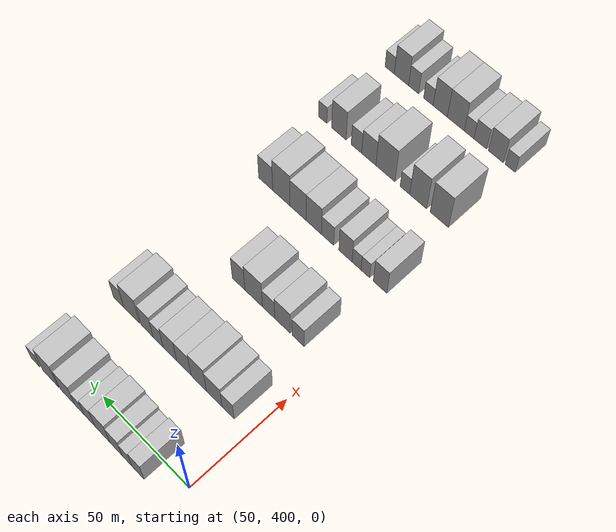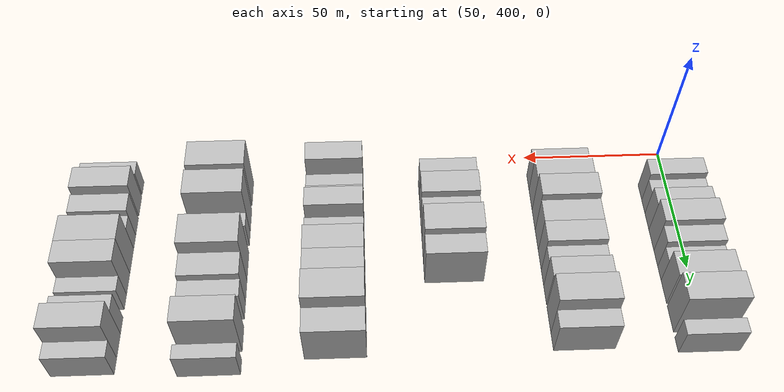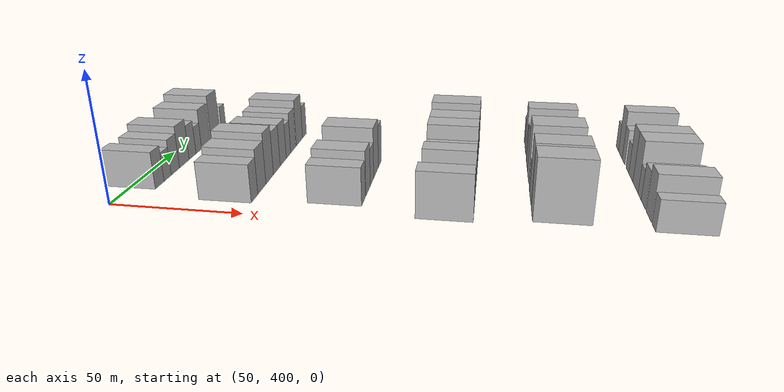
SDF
<sdf version="1.6">
 <world name="default">
  <model name="building_114">
   <static>1</static>
   <pose>50.0000 417.5932 0 0.000000 0.000000 0.000000</pose>
   <link name="link">
    <pose>0 0 7.50 0 0 0</pose>
    <collision name="collision"><geometry><box><size>20.0000 6.8262 15.0000</size></box></geometry></collision>
    <visual name="visual">
     <cast_shadows>0</cast_shadows>
     <geometry><box><size>20.0000 6.8262 15.0000</size></box></geometry>
     <material>
      <script>
       <uri>model://HANNAS_wall/materials/scripts</uri>
       <uri>model://HANNAS_wall/materials/textures</uri>
       <name>vrc/HANNAS_wall</name>
      </script>
     </material>
    </visual>
   </link>
  </model>
  <model name="building_115">
   <static>1</static>
   <pose>50.0000 423.9390 0 0.000000 0.000000 0.000000</pose>
   <link name="link">
    <pose>0 0 6.00 0 0 0</pose>
    <collision name="collision"><geometry><box><size>20.0000 5.8653 12.0000</size></box></geometry></collision>
    <visual name="visual">
     <cast_shadows>0</cast_shadows>
     <geometry><box><size>20.0000 5.8653 12.0000</size></box></geometry>
     <material>
      <script>
       <uri>model://HANNAS_wall/materials/scripts</uri>
       <uri>model://HANNAS_wall/materials/textures</uri>
       <name>vrc/HANNAS_wall</name>
      </script>
     </material>
    </visual>
   </link>
  </model>
  <model name="building_116">
   <static>1</static>
   <pose>50.0000 430.4370 0 0.000000 0.000000 0.000000</pose>
   <link name="link">
    <pose>0 0 7.50 0 0 0</pose>
    <collision name="collision"><geometry><box><size>20.0000 7.1307 15.0000</size></box></geometry></collision>
    <visual name="visual">
     <cast_shadows>0</cast_shadows>
     <geometry><box><size>20.0000 7.1307 15.0000</size></box></geometry>
     <material>
      <script>
       <uri>model://HANNAS_wall/materials/scripts</uri>
       <uri>model://HANNAS_wall/materials/textures</uri>
       <name>vrc/HANNAS_wall</name>
      </script>
     </material>
    </visual>
   </link>
  </model>
  <model name="building_117">
   <static>1</static>
   <pose>50.0000 438.3695 0 0.000000 0.000000 0.000000</pose>
   <link name="link">
    <pose>0 0 9.00 0 0 0</pose>
    <collision name="collision"><geometry><box><size>20.0000 8.7342 18.0000</size></box></geometry></collision>
    <visual name="visual">
     <cast_shadows>0</cast_shadows>
     <geometry><box><size>20.0000 8.7342 18.0000</size></box></geometry>
     <material>
      <script>
       <uri>model://HANNAS_wall/materials/scripts</uri>
       <uri>model://HANNAS_wall/materials/textures</uri>
       <name>vrc/HANNAS_wall</name>
      </script>
     </material>
    </visual>
   </link>
  </model>
  <model name="building_118">
   <static>1</static>
   <pose>50.0000 445.9997 0 0.000000 0.000000 0.000000</pose>
   <link name="link">
    <pose>0 0 7.50 0 0 0</pose>
    <collision name="collision"><geometry><box><size>20.0000 6.5263 15.0000</size></box></geometry></collision>
    <visual name="visual">
     <cast_shadows>0</cast_shadows>
     <geometry><box><size>20.0000 6.5263 15.0000</size></box></geometry>
     <material>
      <script>
       <uri>model://HANNAS_wall/materials/scripts</uri>
       <uri>model://HANNAS_wall/materials/textures</uri>
       <name>vrc/HANNAS_wall</name>
      </script>
     </material>
    </visual>
   </link>
  </model>
  <model name="building_119">
   <static>1</static>
   <pose>50.0000 452.0477 0 0.000000 0.000000 0.000000</pose>
   <link name="link">
    <pose>0 0 6.00 0 0 0</pose>
    <collision name="collision"><geometry><box><size>20.0000 5.5697 12.0000</size></box></geometry></collision>
    <visual name="visual">
     <cast_shadows>0</cast_shadows>
     <geometry><box><size>20.0000 5.5697 12.0000</size></box></geometry>
     <material>
      <script>
       <uri>model://HANNAS_wall/materials/scripts</uri>
       <uri>model://HANNAS_wall/materials/textures</uri>
       <name>vrc/HANNAS_wall</name>
      </script>
     </material>
    </visual>
   </link>
  </model>
  <model name="building_120">
   <static>1</static>
   <pose>50.0000 459.3215 0 0.000000 0.000000 0.000000</pose>
   <link name="link">
    <pose>0 0 9.00 0 0 0</pose>
    <collision name="collision"><geometry><box><size>20.0000 8.9779 18.0000</size></box></geometry></collision>
    <visual name="visual">
     <cast_shadows>0</cast_shadows>
     <geometry><box><size>20.0000 8.9779 18.0000</size></box></geometry>
     <material>
      <script>
       <uri>model://HANNAS_wall/materials/scripts</uri>
       <uri>model://HANNAS_wall/materials/textures</uri>
       <name>vrc/HANNAS_wall</name>
      </script>
     </material>
    </visual>
   </link>
  </model>
  <model name="building_121">
   <static>1</static>
   <pose>50.0000 469.6960 0 0.000000 0.000000 0.000000</pose>
   <link name="link">
    <pose>0 0 10.50 0 0 0</pose>
    <collision name="collision"><geometry><box><size>20.0000 9.7711 21.0000</size></box></geometry></collision>
    <visual name="visual">
     <cast_shadows>0</cast_shadows>
     <geometry><box><size>20.0000 9.7711 21.0000</size></box></geometry>
     <material>
      <script>
       <uri>model://HANNAS_wall/materials/scripts</uri>
       <uri>model://HANNAS_wall/materials/textures</uri>
       <name>vrc/HANNAS_wall</name>
      </script>
     </material>
    </visual>
   </link>
  </model>
  <model name="building_122">
   <static>1</static>
   <pose>50.0000 479.2384 0 0.000000 0.000000 0.000000</pose>
   <link name="link">
    <pose>0 0 6.00 0 0 0</pose>
    <collision name="collision"><geometry><box><size>20.0000 5.3136 12.0000</size></box></geometry></collision>
    <visual name="visual">
     <cast_shadows>0</cast_shadows>
     <geometry><box><size>20.0000 5.3136 12.0000</size></box></geometry>
     <material>
      <script>
       <uri>model://HANNAS_wall/materials/scripts</uri>
       <uri>model://HANNAS_wall/materials/textures</uri>
       <name>vrc/HANNAS_wall</name>
      </script>
     </material>
    </visual>
   </link>
  </model>
  <model name="building_249">
   <static>1</static>
   <pose>90.0000 411.6209 0 0.000000 0.000000 0.000000</pose>
   <link name="link">
    <pose>0 0 7.50 0 0 0</pose>
    <collision name="collision"><geometry><box><size>20.0000 6.8179 15.0000</size></box></geometry></collision>
    <visual name="visual">
     <cast_shadows>0</cast_shadows>
     <geometry><box><size>20.0000 6.8179 15.0000</size></box></geometry>
     <material>
      <script>
       <uri>model://HANNAS_wall/materials/scripts</uri>
       <uri>model://HANNAS_wall/materials/textures</uri>
       <name>vrc/HANNAS_wall</name>
      </script>
     </material>
    </visual>
   </link>
  </model>
  <model name="building_250">
   <static>1</static>
   <pose>90.0000 419.5177 0 0.000000 0.000000 0.000000</pose>
   <link name="link">
    <pose>0 0 9.00 0 0 0</pose>
    <collision name="collision"><geometry><box><size>20.0000 8.9758 18.0000</size></box></geometry></collision>
    <visual name="visual">
     <cast_shadows>0</cast_shadows>
     <geometry><box><size>20.0000 8.9758 18.0000</size></box></geometry>
     <material>
      <script>
       <uri>model://HANNAS_wall/materials/scripts</uri>
       <uri>model://HANNAS_wall/materials/textures</uri>
       <name>vrc/HANNAS_wall</name>
      </script>
     </material>
    </visual>
   </link>
  </model>
  <model name="building_251">
   <static>1</static>
   <pose>90.0000 428.4254 0 0.000000 0.000000 0.000000</pose>
   <link name="link">
    <pose>0 0 10.50 0 0 0</pose>
    <collision name="collision"><geometry><box><size>20.0000 8.8394 21.0000</size></box></geometry></collision>
    <visual name="visual">
     <cast_shadows>0</cast_shadows>
     <geometry><box><size>20.0000 8.8394 21.0000</size></box></geometry>
     <material>
      <script>
       <uri>model://HANNAS_wall/materials/scripts</uri>
       <uri>model://HANNAS_wall/materials/textures</uri>
       <name>vrc/HANNAS_wall</name>
      </script>
     </material>
    </visual>
   </link>
  </model>
  <model name="building_252">
   <static>1</static>
   <pose>90.0000 437.0895 0 0.000000 0.000000 0.000000</pose>
   <link name="link">
    <pose>0 0 9.00 0 0 0</pose>
    <collision name="collision"><geometry><box><size>20.0000 8.4889 18.0000</size></box></geometry></collision>
    <visual name="visual">
     <cast_shadows>0</cast_shadows>
     <geometry><box><size>20.0000 8.4889 18.0000</size></box></geometry>
     <material>
      <script>
       <uri>model://HANNAS_wall/materials/scripts</uri>
       <uri>model://HANNAS_wall/materials/textures</uri>
       <name>vrc/HANNAS_wall</name>
      </script>
     </material>
    </visual>
   </link>
  </model>
  <model name="building_253">
   <static>1</static>
   <pose>90.0000 445.3743 0 0.000000 0.000000 0.000000</pose>
   <link name="link">
    <pose>0 0 9.00 0 0 0</pose>
    <collision name="collision"><geometry><box><size>20.0000 8.0807 18.0000</size></box></geometry></collision>
    <visual name="visual">
     <cast_shadows>0</cast_shadows>
     <geometry><box><size>20.0000 8.0807 18.0000</size></box></geometry>
     <material>
      <script>
       <uri>model://HANNAS_wall/materials/scripts</uri>
       <uri>model://HANNAS_wall/materials/textures</uri>
       <name>vrc/HANNAS_wall</name>
      </script>
     </material>
    </visual>
   </link>
  </model>
  <model name="building_254">
   <static>1</static>
   <pose>90.0000 452.4753 0 0.000000 0.000000 0.000000</pose>
   <link name="link">
    <pose>0 0 7.50 0 0 0</pose>
    <collision name="collision"><geometry><box><size>20.0000 6.1213 15.0000</size></box></geometry></collision>
    <visual name="visual">
     <cast_shadows>0</cast_shadows>
     <geometry><box><size>20.0000 6.1213 15.0000</size></box></geometry>
     <material>
      <script>
       <uri>model://HANNAS_wall/materials/scripts</uri>
       <uri>model://HANNAS_wall/materials/textures</uri>
       <name>vrc/HANNAS_wall</name>
      </script>
     </material>
    </visual>
   </link>
  </model>
  <model name="building_255">
   <static>1</static>
   <pose>90.0000 459.1482 0 0.000000 0.000000 0.000000</pose>
   <link name="link">
    <pose>0 0 9.00 0 0 0</pose>
    <collision name="collision"><geometry><box><size>20.0000 7.2246 18.0000</size></box></geometry></collision>
    <visual name="visual">
     <cast_shadows>0</cast_shadows>
     <geometry><box><size>20.0000 7.2246 18.0000</size></box></geometry>
     <material>
      <script>
       <uri>model://HANNAS_wall/materials/scripts</uri>
       <uri>model://HANNAS_wall/materials/textures</uri>
       <name>vrc/HANNAS_wall</name>
      </script>
     </material>
    </visual>
   </link>
  </model>
  <model name="building_256">
   <static>1</static>
   <pose>90.0000 468.6027 0 0.000000 0.000000 0.000000</pose>
   <link name="link">
    <pose>0 0 10.50 0 0 0</pose>
    <collision name="collision"><geometry><box><size>20.0000 9.6843 21.0000</size></box></geometry></collision>
    <visual name="visual">
     <cast_shadows>0</cast_shadows>
     <geometry><box><size>20.0000 9.6843 21.0000</size></box></geometry>
     <material>
      <script>
       <uri>model://HANNAS_wall/materials/scripts</uri>
       <uri>model://HANNAS_wall/materials/textures</uri>
       <name>vrc/HANNAS_wall</name>
      </script>
     </material>
    </visual>
   </link>
  </model>
  <model name="building_257">
   <static>1</static>
   <pose>90.0000 476.6241 0 0.000000 0.000000 0.000000</pose>
   <link name="link">
    <pose>0 0 7.50 0 0 0</pose>
    <collision name="collision"><geometry><box><size>20.0000 6.3584 15.0000</size></box></geometry></collision>
    <visual name="visual">
     <cast_shadows>0</cast_shadows>
     <geometry><box><size>20.0000 6.3584 15.0000</size></box></geometry>
     <material>
      <script>
       <uri>model://HANNAS_wall/materials/scripts</uri>
       <uri>model://HANNAS_wall/materials/textures</uri>
       <name>vrc/HANNAS_wall</name>
      </script>
     </material>
    </visual>
   </link>
  </model>
  <model name="building_391">
   <static>1</static>
   <pose>130.0000 414.6228 0 0.000000 0.000000 0.000000</pose>
   <link name="link">
    <pose>0 0 7.50 0 0 0</pose>
    <collision name="collision"><geometry><box><size>20.0000 6.9147 15.0000</size></box></geometry></collision>
    <visual name="visual">
     <cast_shadows>0</cast_shadows>
     <geometry><box><size>20.0000 6.9147 15.0000</size></box></geometry>
     <material>
      <script>
       <uri>model://HANNAS_wall/materials/scripts</uri>
       <uri>model://HANNAS_wall/materials/textures</uri>
       <name>vrc/HANNAS_wall</name>
      </script>
     </material>
    </visual>
   </link>
  </model>
  <model name="building_392">
   <static>1</static>
   <pose>130.0000 423.5350 0 0.000000 0.000000 0.000000</pose>
   <link name="link">
    <pose>0 0 9.00 0 0 0</pose>
    <collision name="collision"><geometry><box><size>20.0000 8.9096 18.0000</size></box></geometry></collision>
    <visual name="visual">
     <cast_shadows>0</cast_shadows>
     <geometry><box><size>20.0000 8.9096 18.0000</size></box></geometry>
     <material>
      <script>
       <uri>model://HANNAS_wall/materials/scripts</uri>
       <uri>model://HANNAS_wall/materials/textures</uri>
       <name>vrc/HANNAS_wall</name>
      </script>
     </material>
    </visual>
   </link>
  </model>
  <model name="building_393">
   <static>1</static>
   <pose>130.0000 431.5417 0 0.000000 0.000000 0.000000</pose>
   <link name="link">
    <pose>0 0 7.50 0 0 0</pose>
    <collision name="collision"><geometry><box><size>20.0000 7.1038 15.0000</size></box></geometry></collision>
    <visual name="visual">
     <cast_shadows>0</cast_shadows>
     <geometry><box><size>20.0000 7.1038 15.0000</size></box></geometry>
     <material>
      <script>
       <uri>model://HANNAS_wall/materials/scripts</uri>
       <uri>model://HANNAS_wall/materials/textures</uri>
       <name>vrc/HANNAS_wall</name>
      </script>
     </material>
    </visual>
   </link>
  </model>
  <model name="building_394">
   <static>1</static>
   <pose>130.0000 440.2475 0 0.000000 0.000000 0.000000</pose>
   <link name="link">
    <pose>0 0 10.50 0 0 0</pose>
    <collision name="collision"><geometry><box><size>20.0000 10.3077 21.0000</size></box></geometry></collision>
    <visual name="visual">
     <cast_shadows>0</cast_shadows>
     <geometry><box><size>20.0000 10.3077 21.0000</size></box></geometry>
     <material>
      <script>
       <uri>model://HANNAS_wall/materials/scripts</uri>
       <uri>model://HANNAS_wall/materials/textures</uri>
       <name>vrc/HANNAS_wall</name>
      </script>
     </material>
    </visual>
   </link>
  </model>
  <model name="building_395">
   <static>1</static>
   <pose>130.0000 449.1606 0 0.000000 0.000000 0.000000</pose>
   <link name="link">
    <pose>0 0 9.00 0 0 0</pose>
    <collision name="collision"><geometry><box><size>20.0000 7.5187 18.0000</size></box></geometry></collision>
    <visual name="visual">
     <cast_shadows>0</cast_shadows>
     <geometry><box><size>20.0000 7.5187 18.0000</size></box></geometry>
     <material>
      <script>
       <uri>model://HANNAS_wall/materials/scripts</uri>
       <uri>model://HANNAS_wall/materials/textures</uri>
       <name>vrc/HANNAS_wall</name>
      </script>
     </material>
    </visual>
   </link>
  </model>
  <model name="building_517">
   <static>1</static>
   <pose>170.0000 408.5549 0 0.000000 0.000000 0.000000</pose>
   <link name="link">
    <pose>0 0 9.00 0 0 0</pose>
    <collision name="collision"><geometry><box><size>20.0000 7.6846 18.0000</size></box></geometry></collision>
    <visual name="visual">
     <cast_shadows>0</cast_shadows>
     <geometry><box><size>20.0000 7.6846 18.0000</size></box></geometry>
     <material>
      <script>
       <uri>model://HANNAS_wall/materials/scripts</uri>
       <uri>model://HANNAS_wall/materials/textures</uri>
       <name>vrc/HANNAS_wall</name>
      </script>
     </material>
    </visual>
   </link>
  </model>
  <model name="building_518">
   <static>1</static>
   <pose>170.0000 416.8625 0 0.000000 0.000000 0.000000</pose>
   <link name="link">
    <pose>0 0 6.00 0 0 0</pose>
    <collision name="collision"><geometry><box><size>20.0000 4.9308 12.0000</size></box></geometry></collision>
    <visual name="visual">
     <cast_shadows>0</cast_shadows>
     <geometry><box><size>20.0000 4.9308 12.0000</size></box></geometry>
     <material>
      <script>
       <uri>model://HANNAS_wall/materials/scripts</uri>
       <uri>model://HANNAS_wall/materials/textures</uri>
       <name>vrc/HANNAS_wall</name>
      </script>
     </material>
    </visual>
   </link>
  </model>
  <model name="building_519">
   <static>1</static>
   <pose>170.0000 421.9048 0 0.000000 0.000000 0.000000</pose>
   <link name="link">
    <pose>0 0 6.00 0 0 0</pose>
    <collision name="collision"><geometry><box><size>20.0000 5.1538 12.0000</size></box></geometry></collision>
    <visual name="visual">
     <cast_shadows>0</cast_shadows>
     <geometry><box><size>20.0000 5.1538 12.0000</size></box></geometry>
     <material>
      <script>
       <uri>model://HANNAS_wall/materials/scripts</uri>
       <uri>model://HANNAS_wall/materials/textures</uri>
       <name>vrc/HANNAS_wall</name>
      </script>
     </material>
    </visual>
   </link>
  </model>
  <model name="building_520">
   <static>1</static>
   <pose>170.0000 428.2785 0 0.000000 0.000000 0.000000</pose>
   <link name="link">
    <pose>0 0 9.00 0 0 0</pose>
    <collision name="collision"><geometry><box><size>20.0000 7.5936 18.0000</size></box></geometry></collision>
    <visual name="visual">
     <cast_shadows>0</cast_shadows>
     <geometry><box><size>20.0000 7.5936 18.0000</size></box></geometry>
     <material>
      <script>
       <uri>model://HANNAS_wall/materials/scripts</uri>
       <uri>model://HANNAS_wall/materials/textures</uri>
       <name>vrc/HANNAS_wall</name>
      </script>
     </material>
    </visual>
   </link>
  </model>
  <model name="building_521">
   <static>1</static>
   <pose>170.0000 438.6627 0 0.000000 0.000000 0.000000</pose>
   <link name="link">
    <pose>0 0 7.50 0 0 0</pose>
    <collision name="collision"><geometry><box><size>20.0000 7.1748 15.0000</size></box></geometry></collision>
    <visual name="visual">
     <cast_shadows>0</cast_shadows>
     <geometry><box><size>20.0000 7.1748 15.0000</size></box></geometry>
     <material>
      <script>
       <uri>model://HANNAS_wall/materials/scripts</uri>
       <uri>model://HANNAS_wall/materials/textures</uri>
       <name>vrc/HANNAS_wall</name>
      </script>
     </material>
    </visual>
   </link>
  </model>
  <model name="building_522">
   <static>1</static>
   <pose>170.0000 446.8082 0 0.000000 0.000000 0.000000</pose>
   <link name="link">
    <pose>0 0 10.50 0 0 0</pose>
    <collision name="collision"><geometry><box><size>20.0000 9.1161 21.0000</size></box></geometry></collision>
    <visual name="visual">
     <cast_shadows>0</cast_shadows>
     <geometry><box><size>20.0000 9.1161 21.0000</size></box></geometry>
     <material>
      <script>
       <uri>model://HANNAS_wall/materials/scripts</uri>
       <uri>model://HANNAS_wall/materials/textures</uri>
       <name>vrc/HANNAS_wall</name>
      </script>
     </material>
    </visual>
   </link>
  </model>
  <model name="building_523">
   <static>1</static>
   <pose>170.0000 456.1679 0 0.000000 0.000000 0.000000</pose>
   <link name="link">
    <pose>0 0 10.50 0 0 0</pose>
    <collision name="collision"><geometry><box><size>20.0000 9.6033 21.0000</size></box></geometry></collision>
    <visual name="visual">
     <cast_shadows>0</cast_shadows>
     <geometry><box><size>20.0000 9.6033 21.0000</size></box></geometry>
     <material>
      <script>
       <uri>model://HANNAS_wall/materials/scripts</uri>
       <uri>model://HANNAS_wall/materials/textures</uri>
       <name>vrc/HANNAS_wall</name>
      </script>
     </material>
    </visual>
   </link>
  </model>
  <model name="building_524">
   <static>1</static>
   <pose>170.0000 466.2206 0 0.000000 0.000000 0.000000</pose>
   <link name="link">
    <pose>0 0 12.00 0 0 0</pose>
    <collision name="collision"><geometry><box><size>20.0000 10.5021 24.0000</size></box></geometry></collision>
    <visual name="visual">
     <cast_shadows>0</cast_shadows>
     <geometry><box><size>20.0000 10.5021 24.0000</size></box></geometry>
     <material>
      <script>
       <uri>model://HANNAS_wall/materials/scripts</uri>
       <uri>model://HANNAS_wall/materials/textures</uri>
       <name>vrc/HANNAS_wall</name>
      </script>
     </material>
    </visual>
   </link>
  </model>
  <model name="building_525">
   <static>1</static>
   <pose>170.0000 475.7613 0 0.000000 0.000000 0.000000</pose>
   <link name="link">
    <pose>0 0 9.00 0 0 0</pose>
    <collision name="collision"><geometry><box><size>20.0000 8.5793 18.0000</size></box></geometry></collision>
    <visual name="visual">
     <cast_shadows>0</cast_shadows>
     <geometry><box><size>20.0000 8.5793 18.0000</size></box></geometry>
     <material>
      <script>
       <uri>model://HANNAS_wall/materials/scripts</uri>
       <uri>model://HANNAS_wall/materials/textures</uri>
       <name>vrc/HANNAS_wall</name>
      </script>
     </material>
    </visual>
   </link>
  </model>
  <model name="building_659">
   <static>1</static>
   <pose>210.0000 413.1487 0 0.000000 0.000000 0.000000</pose>
   <link name="link">
    <pose>0 0 12.00 0 0 0</pose>
    <collision name="collision"><geometry><box><size>20.0000 10.3820 24.0000</size></box></geometry></collision>
    <visual name="visual">
     <cast_shadows>0</cast_shadows>
     <geometry><box><size>20.0000 10.3820 24.0000</size></box></geometry>
     <material>
      <script>
       <uri>model://HANNAS_wall/materials/scripts</uri>
       <uri>model://HANNAS_wall/materials/textures</uri>
       <name>vrc/HANNAS_wall</name>
      </script>
     </material>
    </visual>
   </link>
  </model>
  <model name="building_660">
   <static>1</static>
   <pose>210.0000 425.2373 0 0.000000 0.000000 0.000000</pose>
   <link name="link">
    <pose>0 0 12.00 0 0 0</pose>
    <collision name="collision"><geometry><box><size>20.0000 9.7952 24.0000</size></box></geometry></collision>
    <visual name="visual">
     <cast_shadows>0</cast_shadows>
     <geometry><box><size>20.0000 9.7952 24.0000</size></box></geometry>
     <material>
      <script>
       <uri>model://HANNAS_wall/materials/scripts</uri>
       <uri>model://HANNAS_wall/materials/textures</uri>
       <name>vrc/HANNAS_wall</name>
      </script>
     </material>
    </visual>
   </link>
  </model>
  <model name="building_661">
   <static>1</static>
   <pose>210.0000 432.8817 0 0.000000 0.000000 0.000000</pose>
   <link name="link">
    <pose>0 0 6.00 0 0 0</pose>
    <collision name="collision"><geometry><box><size>20.0000 5.4937 12.0000</size></box></geometry></collision>
    <visual name="visual">
     <cast_shadows>0</cast_shadows>
     <geometry><box><size>20.0000 5.4937 12.0000</size></box></geometry>
     <material>
      <script>
       <uri>model://HANNAS_wall/materials/scripts</uri>
       <uri>model://HANNAS_wall/materials/textures</uri>
       <name>vrc/HANNAS_wall</name>
      </script>
     </material>
    </visual>
   </link>
  </model>
  <model name="building_662">
   <static>1</static>
   <pose>210.0000 444.2529 0 0.000000 0.000000 0.000000</pose>
   <link name="link">
    <pose>0 0 12.00 0 0 0</pose>
    <collision name="collision"><geometry><box><size>20.0000 11.2487 24.0000</size></box></geometry></collision>
    <visual name="visual">
     <cast_shadows>0</cast_shadows>
     <geometry><box><size>20.0000 11.2487 24.0000</size></box></geometry>
     <material>
      <script>
       <uri>model://HANNAS_wall/materials/scripts</uri>
       <uri>model://HANNAS_wall/materials/textures</uri>
       <name>vrc/HANNAS_wall</name>
      </script>
     </material>
    </visual>
   </link>
  </model>
  <model name="building_663">
   <static>1</static>
   <pose>210.0000 454.1322 0 0.000000 0.000000 0.000000</pose>
   <link name="link">
    <pose>0 0 9.00 0 0 0</pose>
    <collision name="collision"><geometry><box><size>20.0000 8.5099 18.0000</size></box></geometry></collision>
    <visual name="visual">
     <cast_shadows>0</cast_shadows>
     <geometry><box><size>20.0000 8.5099 18.0000</size></box></geometry>
     <material>
      <script>
       <uri>model://HANNAS_wall/materials/scripts</uri>
       <uri>model://HANNAS_wall/materials/textures</uri>
       <name>vrc/HANNAS_wall</name>
      </script>
     </material>
    </visual>
   </link>
  </model>
  <model name="building_664">
   <static>1</static>
   <pose>210.0000 461.5579 0 0.000000 0.000000 0.000000</pose>
   <link name="link">
    <pose>0 0 7.50 0 0 0</pose>
    <collision name="collision"><geometry><box><size>20.0000 6.3414 15.0000</size></box></geometry></collision>
    <visual name="visual">
     <cast_shadows>0</cast_shadows>
     <geometry><box><size>20.0000 6.3414 15.0000</size></box></geometry>
     <material>
      <script>
       <uri>model://HANNAS_wall/materials/scripts</uri>
       <uri>model://HANNAS_wall/materials/textures</uri>
       <name>vrc/HANNAS_wall</name>
      </script>
     </material>
    </visual>
   </link>
  </model>
  <model name="building_665">
   <static>1</static>
   <pose>210.0000 472.1653 0 0.000000 0.000000 0.000000</pose>
   <link name="link">
    <pose>0 0 10.50 0 0 0</pose>
    <collision name="collision"><geometry><box><size>20.0000 8.8735 21.0000</size></box></geometry></collision>
    <visual name="visual">
     <cast_shadows>0</cast_shadows>
     <geometry><box><size>20.0000 8.8735 21.0000</size></box></geometry>
     <material>
      <script>
       <uri>model://HANNAS_wall/materials/scripts</uri>
       <uri>model://HANNAS_wall/materials/textures</uri>
       <name>vrc/HANNAS_wall</name>
      </script>
     </material>
    </visual>
   </link>
  </model>
  <model name="building_666">
   <static>1</static>
   <pose>210.0000 482.1311 0 0.000000 0.000000 0.000000</pose>
   <link name="link">
    <pose>0 0 6.00 0 0 0</pose>
    <collision name="collision"><geometry><box><size>20.0000 5.0583 12.0000</size></box></geometry></collision>
    <visual name="visual">
     <cast_shadows>0</cast_shadows>
     <geometry><box><size>20.0000 5.0583 12.0000</size></box></geometry>
     <material>
      <script>
       <uri>model://HANNAS_wall/materials/scripts</uri>
       <uri>model://HANNAS_wall/materials/textures</uri>
       <name>vrc/HANNAS_wall</name>
      </script>
     </material>
    </visual>
   </link>
  </model>
  <model name="building_790">
   <static>1</static>
   <pose>250.0000 409.2272 0 0.000000 0.000000 0.000000</pose>
   <link name="link">
    <pose>0 0 6.00 0 0 0</pose>
    <collision name="collision"><geometry><box><size>20.0000 5.6748 12.0000</size></box></geometry></collision>
    <visual name="visual">
     <cast_shadows>0</cast_shadows>
     <geometry><box><size>20.0000 5.6748 12.0000</size></box></geometry>
     <material>
      <script>
       <uri>model://HANNAS_wall/materials/scripts</uri>
       <uri>model://HANNAS_wall/materials/textures</uri>
       <name>vrc/HANNAS_wall</name>
      </script>
     </material>
    </visual>
   </link>
  </model>
  <model name="building_791">
   <static>1</static>
   <pose>250.0000 417.3356 0 0.000000 0.000000 0.000000</pose>
   <link name="link">
    <pose>0 0 9.00 0 0 0</pose>
    <collision name="collision"><geometry><box><size>20.0000 8.5420 18.0000</size></box></geometry></collision>
    <visual name="visual">
     <cast_shadows>0</cast_shadows>
     <geometry><box><size>20.0000 8.5420 18.0000</size></box></geometry>
     <material>
      <script>
       <uri>model://HANNAS_wall/materials/scripts</uri>
       <uri>model://HANNAS_wall/materials/textures</uri>
       <name>vrc/HANNAS_wall</name>
      </script>
     </material>
    </visual>
   </link>
  </model>
  <model name="building_792">
   <static>1</static>
   <pose>250.0000 426.2635 0 0.000000 0.000000 0.000000</pose>
   <link name="link">
    <pose>0 0 7.50 0 0 0</pose>
    <collision name="collision"><geometry><box><size>20.0000 7.3138 15.0000</size></box></geometry></collision>
    <visual name="visual">
     <cast_shadows>0</cast_shadows>
     <geometry><box><size>20.0000 7.3138 15.0000</size></box></geometry>
     <material>
      <script>
       <uri>model://HANNAS_wall/materials/scripts</uri>
       <uri>model://HANNAS_wall/materials/textures</uri>
       <name>vrc/HANNAS_wall</name>
      </script>
     </material>
    </visual>
   </link>
  </model>
  <model name="building_793">
   <static>1</static>
   <pose>250.0000 432.7490 0 0.000000 0.000000 0.000000</pose>
   <link name="link">
    <pose>0 0 6.00 0 0 0</pose>
    <collision name="collision"><geometry><box><size>20.0000 5.6574 12.0000</size></box></geometry></collision>
    <visual name="visual">
     <cast_shadows>0</cast_shadows>
     <geometry><box><size>20.0000 5.6574 12.0000</size></box></geometry>
     <material>
      <script>
       <uri>model://HANNAS_wall/materials/scripts</uri>
       <uri>model://HANNAS_wall/materials/textures</uri>
       <name>vrc/HANNAS_wall</name>
      </script>
     </material>
    </visual>
   </link>
  </model>
  <model name="building_794">
   <static>1</static>
   <pose>250.0000 440.5534 0 0.000000 0.000000 0.000000</pose>
   <link name="link">
    <pose>0 0 10.50 0 0 0</pose>
    <collision name="collision"><geometry><box><size>20.0000 9.9513 21.0000</size></box></geometry></collision>
    <visual name="visual">
     <cast_shadows>0</cast_shadows>
     <geometry><box><size>20.0000 9.9513 21.0000</size></box></geometry>
     <material>
      <script>
       <uri>model://HANNAS_wall/materials/scripts</uri>
       <uri>model://HANNAS_wall/materials/textures</uri>
       <name>vrc/HANNAS_wall</name>
      </script>
     </material>
    </visual>
   </link>
  </model>
  <model name="building_795">
   <static>1</static>
   <pose>250.0000 449.7405 0 0.000000 0.000000 0.000000</pose>
   <link name="link">
    <pose>0 0 10.50 0 0 0</pose>
    <collision name="collision"><geometry><box><size>20.0000 8.4228 21.0000</size></box></geometry></collision>
    <visual name="visual">
     <cast_shadows>0</cast_shadows>
     <geometry><box><size>20.0000 8.4228 21.0000</size></box></geometry>
     <material>
      <script>
       <uri>model://HANNAS_wall/materials/scripts</uri>
       <uri>model://HANNAS_wall/materials/textures</uri>
       <name>vrc/HANNAS_wall</name>
      </script>
     </material>
    </visual>
   </link>
  </model>
  <model name="building_796">
   <static>1</static>
   <pose>250.0000 456.7823 0 0.000000 0.000000 0.000000</pose>
   <link name="link">
    <pose>0 0 6.00 0 0 0</pose>
    <collision name="collision"><geometry><box><size>20.0000 5.6609 12.0000</size></box></geometry></collision>
    <visual name="visual">
     <cast_shadows>0</cast_shadows>
     <geometry><box><size>20.0000 5.6609 12.0000</size></box></geometry>
     <material>
      <script>
       <uri>model://HANNAS_wall/materials/scripts</uri>
       <uri>model://HANNAS_wall/materials/textures</uri>
       <name>vrc/HANNAS_wall</name>
      </script>
     </material>
    </visual>
   </link>
  </model>
  <model name="building_797">
   <static>1</static>
   <pose>250.0000 465.6518 0 0.000000 0.000000 0.000000</pose>
   <link name="link">
    <pose>0 0 7.50 0 0 0</pose>
    <collision name="collision"><geometry><box><size>20.0000 6.0780 15.0000</size></box></geometry></collision>
    <visual name="visual">
     <cast_shadows>0</cast_shadows>
     <geometry><box><size>20.0000 6.0780 15.0000</size></box></geometry>
     <material>
      <script>
       <uri>model://HANNAS_wall/materials/scripts</uri>
       <uri>model://HANNAS_wall/materials/textures</uri>
       <name>vrc/HANNAS_wall</name>
      </script>
     </material>
    </visual>
   </link>
  </model>
  <model name="building_798">
   <static>1</static>
   <pose>250.0000 473.0559 0 0.000000 0.000000 0.000000</pose>
   <link name="link">
    <pose>0 0 10.50 0 0 0</pose>
    <collision name="collision"><geometry><box><size>20.0000 8.7303 21.0000</size></box></geometry></collision>
    <visual name="visual">
     <cast_shadows>0</cast_shadows>
     <geometry><box><size>20.0000 8.7303 21.0000</size></box></geometry>
     <material>
      <script>
       <uri>model://HANNAS_wall/materials/scripts</uri>
       <uri>model://HANNAS_wall/materials/textures</uri>
       <name>vrc/HANNAS_wall</name>
      </script>
     </material>
    </visual>
   </link>
  </model>
  <model name="building_799">
   <static>1</static>
   <pose>250.0000 480.2917 0 0.000000 0.000000 0.000000</pose>
   <link name="link">
    <pose>0 0 6.00 0 0 0</pose>
    <collision name="collision"><geometry><box><size>20.0000 5.7413 12.0000</size></box></geometry></collision>
    <visual name="visual">
     <cast_shadows>0</cast_shadows>
     <geometry><box><size>20.0000 5.7413 12.0000</size></box></geometry>
     <material>
      <script>
       <uri>model://HANNAS_wall/materials/scripts</uri>
       <uri>model://HANNAS_wall/materials/textures</uri>
       <name>vrc/HANNAS_wall</name>
      </script>
     </material>
    </visual>
   </link>
  </model>
 </world>
</sdf>
